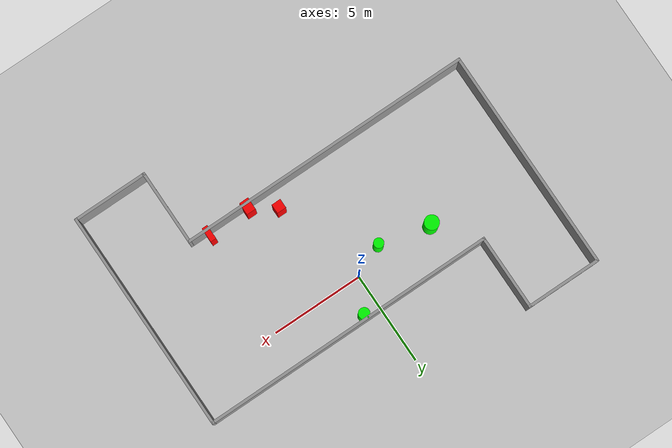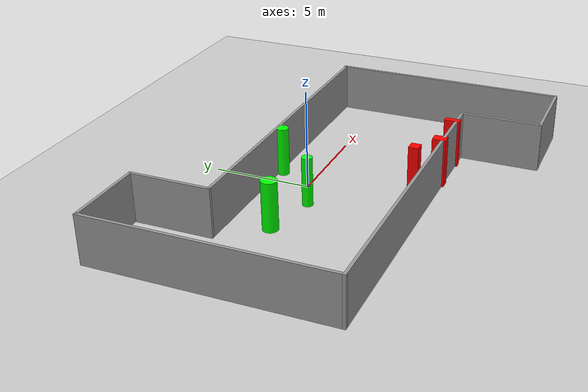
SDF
<sdf version="1.7">
 <world name="default">
  <light name="sun" type="directional">
   <pose>0 0 10 0 -0 0</pose>
   <diffuse>0.8 0.8 0.8 1</diffuse>
   <specular>0.2 0.2 0.2 1</specular>
   <attenuation>
    <range>1000</range>
    <constant>0.9</constant>
    <linear>0.01</linear>
    <quadratic>0.001</quadratic>
   </attenuation>
   <direction>-0.5 0.1 -0.9</direction>
   <spot><inner_angle>0</inner_angle><outer_angle>0</outer_angle><falloff>0</falloff></spot>
  </light>
  <model name="ground_plane">
   <static>1</static>
   <link name="link">
    <collision name="collision">
     <geometry><plane><normal>0 0 1</normal><size>100 100</size></plane></geometry>
     <surface>
      <contact><collide_bitmask>65535</collide_bitmask></contact>
      <friction><ode><mu>100</mu><mu2>50</mu2></ode></friction>
     </surface>
    </collision>
    <visual name="visual">
     <cast_shadows>0</cast_shadows>
     <geometry><plane><normal>0 0 1</normal><size>100 100</size></plane></geometry>
     <material>
      <script><uri>file://media/materials/scripts/gazebo.material</uri><name>Gazebo/Grey</name></script>
     </material>
    </visual>
   </link>
  </model>
  <gravity>0 0 -9.8</gravity>
  <magnetic_field>6e-06 2.3e-05 -4.2e-05</magnetic_field>
  <atmosphere type="adiabatic"/>
  <physics type="ode">
   <max_step_size>0.001</max_step_size>
   <real_time_factor>1</real_time_factor>
   <real_time_update_rate>1000</real_time_update_rate>
  </physics>
  <scene><ambient>0.4 0.4 0.4 1</ambient><background>0.7 0.7 0.7 1</background><shadows>1</shadows></scene>
  <spherical_coordinates>
   <surface_model>EARTH_WGS84</surface_model>
   <latitude_deg>0</latitude_deg>
   <longitude_deg>0</longitude_deg>
   <elevation>0</elevation>
   <heading_deg>0</heading_deg>
  </spherical_coordinates>
  <model name="my_base_walls">
   <link name="Wall_13">
    <collision name="Wall_13_Collision">
     <geometry><box><size>12.15 0.15 2.5</size></box></geometry>
     <pose>0 0 1.25 0 -0 0</pose>
    </collision>
    <visual name="Wall_13_Visual">
     <pose>0 0 1.25 0 -0 0</pose>
     <geometry><box><size>12.15 0.15 2.5</size></box></geometry>
     <material>
      <script><uri>file://media/materials/scripts/gazebo.material</uri><name>Gazebo/Grey</name></script>
      <ambient>1 1 1 1</ambient>
     </material>
     <meta><layer>0</layer></meta>
    </visual>
    <pose>10 -2 0 0 -0 1.5708</pose>
   </link>
   <link name="Wall_15">
    <collision name="Wall_15_Collision">
     <geometry><box><size>16.15 0.15 2.5</size></box></geometry>
     <pose>0 0 1.25 0 -0 0</pose>
    </collision>
    <visual name="Wall_15_Visual">
     <pose>0 0 1.25 0 -0 0</pose>
     <geometry><box><size>16.15 0.15 2.5</size></box></geometry>
     <material>
      <script><uri>file://media/materials/scripts/gazebo.material</uri><name>Gazebo/Grey</name></script>
      <ambient>1 1 1 1</ambient>
     </material>
     <meta><layer>0</layer></meta>
    </visual>
    <pose>2 4 0 0 -0 3.14159</pose>
   </link>
   <link name="Wall_17">
    <collision name="Wall_17_Collision">
     <geometry><box><size>4.15 0.15 2.5</size></box></geometry>
     <pose>0 0 1.25 0 -0 0</pose>
    </collision>
    <visual name="Wall_17_Visual">
     <pose>0 0 1.25 0 -0 0</pose>
     <geometry><box><size>4.15 0.15 2.5</size></box></geometry>
     <material>
      <script><uri>file://media/materials/scripts/gazebo.material</uri><name>Gazebo/Grey</name></script>
      <ambient>1 1 1 1</ambient>
     </material>
     <meta><layer>0</layer></meta>
    </visual>
    <pose>6 -6 0 0 -0 -1.5708</pose>
   </link>
   <link name="Wall_19">
    <collision name="Wall_19_Collision">
     <geometry><box><size>12.15 0.15 2.5</size></box></geometry>
     <pose>0 0 1.25 0 -0 0</pose>
    </collision>
    <visual name="Wall_19_Visual">
     <pose>0 0 1.25 0 -0 0</pose>
     <geometry><box><size>12.15 0.15 2.5</size></box></geometry>
     <material>
      <script><uri>file://media/materials/scripts/gazebo.material</uri><name>Gazebo/Grey</name></script>
      <ambient>1 1 1 1</ambient>
     </material>
     <meta><layer>0</layer></meta>
    </visual>
    <pose>-10 2 0 0 -0 1.5708</pose>
   </link>
   <link name="Wall_21">
    <collision name="Wall_21_Collision">
     <geometry><box><size>4.15 0.15 2.5</size></box></geometry>
     <pose>0 0 1.25 0 -0 0</pose>
    </collision>
    <visual name="Wall_21_Visual">
     <pose>0 0 1.25 0 -0 0</pose>
     <geometry><box><size>4.15 0.15 2.5</size></box></geometry>
     <material>
      <script><uri>file://media/materials/scripts/gazebo.material</uri><name>Gazebo/Grey</name></script>
      <ambient>1 1 1 1</ambient>
     </material>
     <meta><layer>0</layer></meta>
    </visual>
    <pose>-8 8 0 0 -0 0</pose>
   </link>
   <link name="Wall_23">
    <collision name="Wall_23_Collision">
     <geometry><box><size>4.15 0.15 2.5</size></box></geometry>
     <pose>0 0 1.25 0 -0 0</pose>
    </collision>
    <visual name="Wall_23_Visual">
     <pose>0 0 1.25 0 -0 0</pose>
     <geometry><box><size>4.15 0.15 2.5</size></box></geometry>
     <material>
      <script><uri>file://media/materials/scripts/gazebo.material</uri><name>Gazebo/Grey</name></script>
      <ambient>1 1 1 1</ambient>
     </material>
     <meta><layer>0</layer></meta>
    </visual>
    <pose>-6 6 0 0 -0 -1.5708</pose>
   </link>
   <link name="Wall_25">
    <collision name="Wall_25_Collision">
     <geometry><box><size>4.15 0.15 2.5</size></box></geometry>
     <pose>0 0 1.25 0 -0 0</pose>
    </collision>
    <visual name="Wall_25_Visual">
     <pose>0 0 1.25 0 -0 0</pose>
     <geometry><box><size>4.15 0.15 2.5</size></box></geometry>
     <material>
      <script><uri>file://media/materials/scripts/gazebo.material</uri><name>Gazebo/Grey</name></script>
      <ambient>1 1 1 1</ambient>
     </material>
     <meta><layer>0</layer></meta>
    </visual>
    <pose>8 -8 0 0 -0 0</pose>
   </link>
   <link name="Wall_9">
    <collision name="Wall_9_Collision">
     <geometry><box><size>16.15 0.15 2.5</size></box></geometry>
     <pose>0 0 1.25 0 -0 0</pose>
    </collision>
    <visual name="Wall_9_Visual">
     <pose>0 0 1.25 0 -0 0</pose>
     <geometry><box><size>16.15 0.15 2.5</size></box></geometry>
     <material>
      <script><uri>file://media/materials/scripts/gazebo.material</uri><name>Gazebo/Grey</name></script>
      <ambient>1 1 1 1</ambient>
     </material>
     <meta><layer>0</layer></meta>
    </visual>
    <pose>-2 -4 0 0 -0 3.14159</pose>
   </link>
   <static>1</static>
   <pose>-0 -2 0 0 -0 0</pose>
  </model>
  <model name="cylinder1">
   <static>1</static>
   <link name="link">
    <inertial>
     <mass>1</mass>
     <inertia><ixx>0.5</ixx><ixy>0</ixy><ixz>0</ixz><iyy>0.5</iyy><iyz>0</iyz><izz>1</izz></inertia>
    </inertial>
    <collision name="collision">
     <geometry><cylinder><radius>0.3884167957047204</radius><length>2.5</length></cylinder></geometry>
    </collision>
    <visual name="visual">
     <geometry><cylinder><radius>0.3884167957047204</radius><length>2.5</length></cylinder></geometry>
     <material>
      <ambient>0 1 0 1</ambient>
      <diffuse>0 1 0 1</diffuse>
      <specular>0.1 0.1 0.1 1</specular>
      <emissive>0 0 0 0</emissive>
     </material>
    </visual>
   </link>
   <pose>-4.3531274045737085 -0.09190314279644252 1.25 0 0 0</pose>
  </model>
  <model name="cylinder2">
   <static>1</static>
   <link name="link">
    <inertial>
     <mass>1</mass>
     <inertia><ixx>0.5</ixx><ixy>0</ixy><ixz>0</ixz><iyy>0.5</iyy><iyz>0</iyz><izz>1</izz></inertia>
    </inertial>
    <collision name="collision">
     <geometry><cylinder><radius>0.3032460807109423</radius><length>2.5</length></cylinder></geometry>
    </collision>
    <visual name="visual">
     <geometry><cylinder><radius>0.3032460807109423</radius><length>2.5</length></cylinder></geometry>
     <material>
      <ambient>0 1 0 1</ambient>
      <diffuse>0 1 0 1</diffuse>
      <specular>0.1 0.1 0.1 1</specular>
      <emissive>0 0 0 0</emissive>
     </material>
    </visual>
   </link>
   <pose>0.9028242082468285 1.7389067534329632 1.25 0 0 0</pose>
  </model>
  <model name="cylinder3">
   <static>1</static>
   <link name="link">
    <inertial>
     <mass>1</mass>
     <inertia><ixx>0.5</ixx><ixy>0</ixy><ixz>0</ixz><iyy>0.5</iyy><iyz>0</iyz><izz>1</izz></inertia>
    </inertial>
    <collision name="collision">
     <geometry><cylinder><radius>0.26762695855216656</radius><length>2.5</length></cylinder></geometry>
    </collision>
    <visual name="visual">
     <geometry><cylinder><radius>0.26762695855216656</radius><length>2.5</length></cylinder></geometry>
     <material>
      <ambient>0 1 0 1</ambient>
      <diffuse>0 1 0 1</diffuse>
      <specular>0.1 0.1 0.1 1</specular>
      <emissive>0 0 0 0</emissive>
     </material>
    </visual>
   </link>
   <pose>-1.6301786964216243 -0.7158204834998534 1.25 0 0 0</pose>
  </model>
  <model name="box1">
   <static>1</static>
   <link name="link">
    <inertial>
     <mass>1</mass>
     <inertia><ixx>0.083</ixx><ixy>0</ixy><ixz>0</ixz><iyy>0.083</iyy><iyz>0</iyz><izz>0.083</izz></inertia>
    </inertial>
    <collision name="collision">
     <geometry><box><size>0.5090860856923497 0.6737674212914311 2.5</size></box></geometry>
    </collision>
    <visual name="visual">
     <geometry><box><size>0.5090860856923497 0.6737674212914311 2.5</size></box></geometry>
     <material>
      <ambient>1 0 0 1</ambient>
      <diffuse>1 0 0 1</diffuse>
      <specular>0.1 0.1 0.1 1</specular>
      <emissive>0 0 0 0</emissive>
     </material>
    </visual>
    <sensor name="my_contact" type="contact">
     <contact><collision>box_collision</collision><topic>__default_topic__</topic></contact>
    </sensor>
   </link>
   <pose>2.678290118185739 -5.828324543331165 1.25 0 0 0</pose>
  </model>
  <model name="box2">
   <static>1</static>
   <link name="link">
    <inertial>
     <mass>1</mass>
     <inertia><ixx>0.083</ixx><ixy>0</ixy><ixz>0</ixz><iyy>0.083</iyy><iyz>0</iyz><izz>0.083</izz></inertia>
    </inertial>
    <collision name="collision">
     <geometry><box><size>0.5094742185494172 0.5017635063993484 2.5</size></box></geometry>
    </collision>
    <visual name="visual">
     <geometry><box><size>0.5094742185494172 0.5017635063993484 2.5</size></box></geometry>
     <material>
      <ambient>1 0 0 1</ambient>
      <diffuse>1 0 0 1</diffuse>
      <specular>0.1 0.1 0.1 1</specular>
      <emissive>0 0 0 0</emissive>
     </material>
    </visual>
    <sensor name="my_contact" type="contact">
     <contact><collision>box_collision</collision><topic>__default_topic__</topic></contact>
    </sensor>
   </link>
   <pose>1.4061937584404065 -4.96440590530531 1.25 0 0 0</pose>
  </model>
  <model name="box3">
   <static>1</static>
   <link name="link">
    <inertial>
     <mass>1</mass>
     <inertia><ixx>0.083</ixx><ixy>0</ixy><ixz>0</ixz><iyy>0.083</iyy><iyz>0</iyz><izz>0.083</izz></inertia>
    </inertial>
    <collision name="collision">
     <geometry><box><size>0.31333319471323035 0.788559114935429 2.5</size></box></geometry>
    </collision>
    <visual name="visual">
     <geometry><box><size>0.31333319471323035 0.788559114935429 2.5</size></box></geometry>
     <material>
      <ambient>1 0 0 1</ambient>
      <diffuse>1 0 0 1</diffuse>
      <specular>0.1 0.1 0.1 1</specular>
      <emissive>0 0 0 0</emissive>
     </material>
    </visual>
    <sensor name="my_contact" type="contact">
     <contact><collision>box_collision</collision><topic>__default_topic__</topic></contact>
    </sensor>
   </link>
   <pose>4.99230219131884 -5.775784910868717 1.25 0 0 0</pose>
  </model>
 </world>
</sdf>
